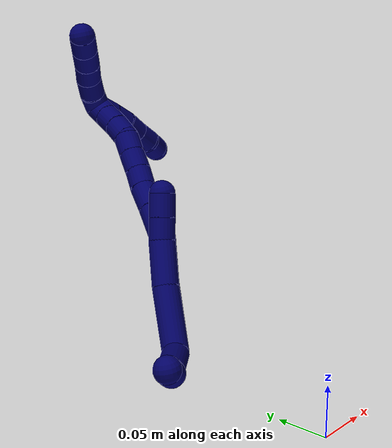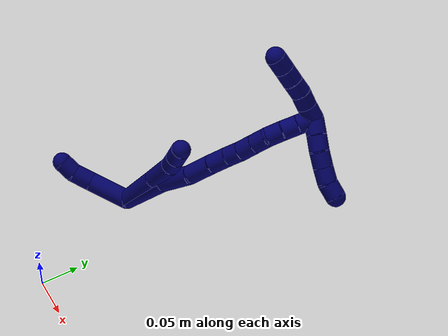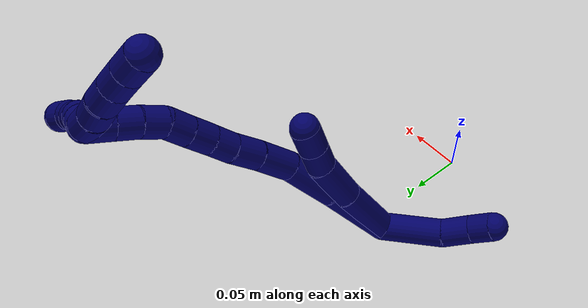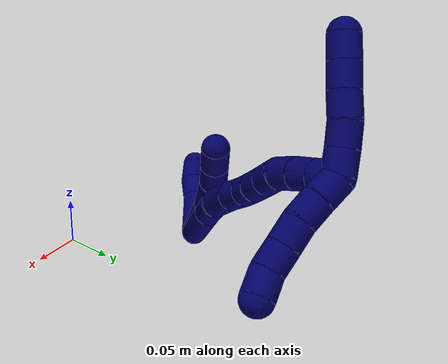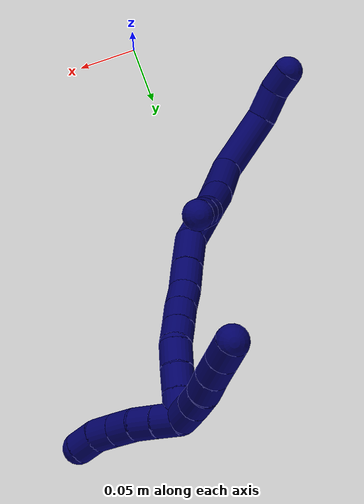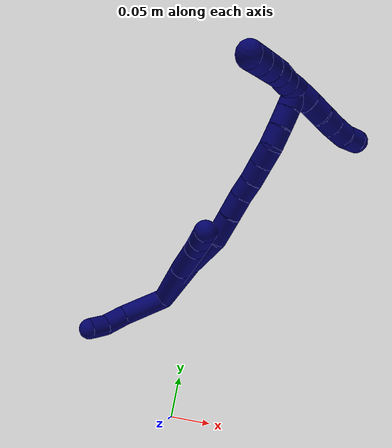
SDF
<sdf version="1.7">
 <world name="default">
  <model name="photoneo_s_sensor">
   <static>1</static>
   <pose>0 0 2 1.57079 1.57079 3.14159</pose>
   <link name="link">
    <inertial><mass>0.1</mass></inertial>
    <sensor name="sensor" type="depth">
     <update_rate>30</update_rate>
     <camera>
      <horizontal_fov>1.22</horizontal_fov>
      <image><width>1920</width><height>1200</height><format>B8G8R8</format></image>
      <clip><near>0.1</near><far>4</far></clip>
      <depth_camera><output>points</output></depth_camera>
     </camera>
     <plugin name="camera_plugin" filename="libgazebo_ros_depth_camera.so">
      <baseline>0.2</baseline>
      <alwaysOn>1</alwaysOn>
      <updateRate>0.0</updateRate>
      <cameraName>camera_ir</cameraName>
      <imageTopicName>/camera/color/image_raw</imageTopicName>
      <cameraInfoTopicName>/camera/color/camera_info</cameraInfoTopicName>
      <depthImageTopicName>/camera/depth/image_raw</depthImageTopicName>
      <depthImageCameraInfoTopicName>/camera/depth/camera_info</depthImageCameraInfoTopicName>
      <pointCloudTopicName>/camera/depth/points</pointCloudTopicName>
      <frameName>fr_optical</frameName>
      <pointCloudCutoff>0.1</pointCloudCutoff>
      <pointCloudCutoffMax>2.0</pointCloudCutoffMax>
      <distortionK1>0</distortionK1>
      <distortionK2>0</distortionK2>
      <distortionK3>0</distortionK3>
      <distortionT1>0</distortionT1>
      <distortionT2>0</distortionT2>
      <CxPrime>0</CxPrime>
      <Cx>0</Cx>
      <Cy>0</Cy>
      <focalLength>0</focalLength>
      <hackBaseline>0</hackBaseline>
     </plugin>
    </sensor>
   </link>
  </model>
  <model name="bin">
   <static>1</static>
   <link name="bottom">
    <collision name="collision-bottom">
     <pose>0 0 -0.01 0 -0 0</pose>
     <geometry><box><size>0.8 0.6 0.02</size></box></geometry>
     <surface>
      <friction><ode><mu>100</mu><mu2>100</mu2></ode></friction>
      <contact><collide_bitmask>65535</collide_bitmask></contact>
     </surface>
    </collision>
   </link>
   <link name="west_wall">
    <collision name="collision-west_wall">
     <pose>-0.41 0 0.1 0 -0 0</pose>
     <geometry><box><size>0.02 0.6 0.2</size></box></geometry>
     <surface>
      <friction><ode><mu>100</mu><mu2>100</mu2></ode></friction>
      <contact><collide_bitmask>65535</collide_bitmask></contact>
     </surface>
    </collision>
   </link>
   <link name="east_wall">
    <collision name="collision-east_wall">
     <pose>0.41 0 0.1 0 -0 0</pose>
     <geometry><box><size>0.02 0.6 0.2</size></box></geometry>
     <surface>
      <friction><ode><mu>100</mu><mu2>100</mu2></ode></friction>
      <contact><collide_bitmask>65535</collide_bitmask></contact>
     </surface>
    </collision>
   </link>
   <link name="south_wall">
    <collision name="collision-south_wall">
     <pose>0 -0.31 0.1 0 -0 0</pose>
     <geometry><box><size>0.8 0.02 0.2</size></box></geometry>
     <surface>
      <friction><ode><mu>100</mu><mu2>100</mu2></ode></friction>
      <contact><collide_bitmask>65535</collide_bitmask></contact>
     </surface>
    </collision>
   </link>
   <link name="north_wall">
    <collision name="collision-north_wall">
     <pose>0 0.31 0.1 0 -0 0</pose>
     <geometry><box><size>0.8 0.02 0.2</size></box></geometry>
     <surface>
      <friction><ode><mu>100</mu><mu2>100</mu2></ode></friction>
      <contact><collide_bitmask>65535</collide_bitmask></contact>
     </surface>
    </collision>
   </link>
  </model>
  <model name="7">
   <static>0</static>
   <link name="7">
    <collision name="collision-cylinder-e_1_2_8">
     <pose>0.009693 -0.010179 -0.0278 2.79061 0.316416 1.46536</pose>
     <geometry><cylinder><radius>0.0125</radius><length>0.062303</length></cylinder></geometry>
     <surface>
      <friction><ode><mu>1.16</mu><mu2>1.16</mu2><slip1>0</slip1><slip2>0</slip2></ode></friction>
      <contact><ode><kp>1e+06</kp><kd>1</kd><max_vel>0</max_vel><min_depth>0.001</min_depth></ode></contact>
     </surface>
    </collision>
    <visual name="visual-cylinder-e_1_2_8">
     <pose>0.009693 -0.010179 -0.0278 2.79061 0.316416 1.46536</pose>
     <geometry><cylinder><radius>0.0125</radius><length>0.062303</length></cylinder></geometry>
     <material><ambient>0.003922 0 0.403922 1</ambient></material>
    </visual>
    <collision name="collision-cylinder-e_2_8_9">
     <pose>0.026956 -0.02578 -0.075352 2.87369 0.354015 1.8503</pose>
     <geometry><cylinder><radius>0.0125</radius><length>0.043672</length></cylinder></geometry>
     <surface>
      <friction><ode><mu>1.16</mu><mu2>1.16</mu2><slip1>0</slip1><slip2>0</slip2></ode></friction>
      <contact><ode><kp>1e+06</kp><kd>1</kd><max_vel>0</max_vel><min_depth>0.001</min_depth></ode></contact>
     </surface>
    </collision>
    <visual name="visual-cylinder-e_2_8_9">
     <pose>0.026956 -0.02578 -0.075352 2.87369 0.354015 1.8503</pose>
     <geometry><cylinder><radius>0.0125</radius><length>0.043672</length></cylinder></geometry>
     <material><ambient>0.003922 0 0.403922 1</ambient></material>
    </visual>
    <collision name="collision-cylinder-e_3_9_10">
     <pose>0.037632 -0.031577 -0.105403 3.10516 0.292722 2.8957</pose>
     <geometry><cylinder><radius>0.0125</radius><length>0.021528</length></cylinder></geometry>
     <surface>
      <friction><ode><mu>1.16</mu><mu2>1.16</mu2><slip1>0</slip1><slip2>0</slip2></ode></friction>
      <contact><ode><kp>1e+06</kp><kd>1</kd><max_vel>0</max_vel><min_depth>0.001</min_depth></ode></contact>
     </surface>
    </collision>
    <visual name="visual-cylinder-e_3_9_10">
     <pose>0.037632 -0.031577 -0.105403 3.10516 0.292722 2.8957</pose>
     <geometry><cylinder><radius>0.0125</radius><length>0.021528</length></cylinder></geometry>
     <material><ambient>0.003922 0 0.403922 1</ambient></material>
    </visual>
    <collision name="collision-cylinder-e_4_10_6">
     <pose>0.043914 -0.032328 -0.126486 3.10677 0.28622 2.90109</pose>
     <geometry><cylinder><radius>0.0125</radius><length>0.022497</length></cylinder></geometry>
     <surface>
      <friction><ode><mu>1.16</mu><mu2>1.16</mu2><slip1>0</slip1><slip2>0</slip2></ode></friction>
      <contact><ode><kp>1e+06</kp><kd>1</kd><max_vel>0</max_vel><min_depth>0.001</min_depth></ode></contact>
     </surface>
    </collision>
    <visual name="visual-cylinder-e_4_10_6">
     <pose>0.043914 -0.032328 -0.126486 3.10677 0.28622 2.90109</pose>
     <geometry><cylinder><radius>0.0125</radius><length>0.022497</length></cylinder></geometry>
     <material><ambient>0.003922 0 0.403922 1</ambient></material>
    </visual>
    <collision name="collision-cylinder-e_1_2_11">
     <pose>-0.019139 0.018728 -0.000996 -1.62392 -0.795541 0.83421</pose>
     <geometry><cylinder><radius>0.0125</radius><length>0.053592</length></cylinder></geometry>
     <surface>
      <friction><ode><mu>1.16</mu><mu2>1.16</mu2><slip1>0</slip1><slip2>0</slip2></ode></friction>
      <contact><ode><kp>1e+06</kp><kd>1</kd><max_vel>0</max_vel><min_depth>0.001</min_depth></ode></contact>
     </surface>
    </collision>
    <visual name="visual-cylinder-e_1_2_11">
     <pose>-0.019139 0.018728 -0.000996 -1.62392 -0.795541 0.83421</pose>
     <geometry><cylinder><radius>0.0125</radius><length>0.053592</length></cylinder></geometry>
     <material><ambient>0.003922 0 0.403922 1</ambient></material>
    </visual>
    <collision name="collision-cylinder-e_2_11_12">
     <pose>-0.045461 0.047639 -0.005105 -1.86747 -0.593463 0.783659</pose>
     <geometry><cylinder><radius>0.0125</radius><length>0.02569</length></cylinder></geometry>
     <surface>
      <friction><ode><mu>1.16</mu><mu2>1.16</mu2><slip1>0</slip1><slip2>0</slip2></ode></friction>
      <contact><ode><kp>1e+06</kp><kd>1</kd><max_vel>0</max_vel><min_depth>0.001</min_depth></ode></contact>
     </surface>
    </collision>
    <visual name="visual-cylinder-e_2_11_12">
     <pose>-0.045461 0.047639 -0.005105 -1.86747 -0.593463 0.783659</pose>
     <geometry><cylinder><radius>0.0125</radius><length>0.02569</length></cylinder></geometry>
     <material><ambient>0.003922 0 0.403922 1</ambient></material>
    </visual>
    <collision name="collision-cylinder-e_3_12_5">
     <pose>-0.059062 0.064247 -0.013203 -2.23071 -0.66809 1.23293</pose>
     <geometry><cylinder><radius>0.0125</radius><length>0.020718</length></cylinder></geometry>
     <surface>
      <friction><ode><mu>1.16</mu><mu2>1.16</mu2><slip1>0</slip1><slip2>0</slip2></ode></friction>
      <contact><ode><kp>1e+06</kp><kd>1</kd><max_vel>0</max_vel><min_depth>0.001</min_depth></ode></contact>
     </surface>
    </collision>
    <visual name="visual-cylinder-e_3_12_5">
     <pose>-0.059062 0.064247 -0.013203 -2.23071 -0.66809 1.23293</pose>
     <geometry><cylinder><radius>0.0125</radius><length>0.020718</length></cylinder></geometry>
     <material><ambient>0.003922 0 0.403922 1</ambient></material>
    </visual>
    <collision name="collision-cylinder-e_1_2_13">
     <pose>0.013936 -0.01478 -0.028581 2.66433 0.408717 1.41127</pose>
     <geometry><cylinder><radius>0.0125</radius><length>0.070129</length></cylinder></geometry>
     <surface>
      <friction><ode><mu>1.16</mu><mu2>1.16</mu2><slip1>0</slip1><slip2>0</slip2></ode></friction>
      <contact><ode><kp>1e+06</kp><kd>1</kd><max_vel>0</max_vel><min_depth>0.001</min_depth></ode></contact>
     </surface>
    </collision>
    <visual name="visual-cylinder-e_1_2_13">
     <pose>0.013936 -0.01478 -0.028581 2.66433 0.408717 1.41127</pose>
     <geometry><cylinder><radius>0.0125</radius><length>0.070129</length></cylinder></geometry>
     <material><ambient>0.003922 0 0.403922 1</ambient></material>
    </visual>
    <collision name="collision-cylinder-e_2_13_14">
     <pose>0.039856 -0.040553 -0.074694 2.58152 0.524952 1.50279</pose>
     <geometry><cylinder><radius>0.0125</radius><length>0.047828</length></cylinder></geometry>
     <surface>
      <friction><ode><mu>1.16</mu><mu2>1.16</mu2><slip1>0</slip1><slip2>0</slip2></ode></friction>
      <contact><ode><kp>1e+06</kp><kd>1</kd><max_vel>0</max_vel><min_depth>0.001</min_depth></ode></contact>
     </surface>
    </collision>
    <visual name="visual-cylinder-e_2_13_14">
     <pose>0.039856 -0.040553 -0.074694 2.58152 0.524952 1.50279</pose>
     <geometry><cylinder><radius>0.0125</radius><length>0.047828</length></cylinder></geometry>
     <material><ambient>0.003922 0 0.403922 1</ambient></material>
    </visual>
    <collision name="collision-cylinder-e_3_14_15">
     <pose>0.056732 -0.061638 -0.105059 2.47527 0.291091 0.801319</pose>
     <geometry><cylinder><radius>0.0125</radius><length>0.034084</length></cylinder></geometry>
     <surface>
      <friction><ode><mu>1.16</mu><mu2>1.16</mu2><slip1>0</slip1><slip2>0</slip2></ode></friction>
      <contact><ode><kp>1e+06</kp><kd>1</kd><max_vel>0</max_vel><min_depth>0.001</min_depth></ode></contact>
     </surface>
    </collision>
    <visual name="visual-cylinder-e_3_14_15">
     <pose>0.056732 -0.061638 -0.105059 2.47527 0.291091 0.801319</pose>
     <geometry><cylinder><radius>0.0125</radius><length>0.034084</length></cylinder></geometry>
     <material><ambient>0.003922 0 0.403922 1</ambient></material>
    </visual>
    <collision name="collision-cylinder-e_4_15_16">
     <pose>0.065204 -0.079843 -0.127013 2.4145 0.285337 0.722019</pose>
     <geometry><cylinder><radius>0.0125</radius><length>0.025444</length></cylinder></geometry>
     <surface>
      <friction><ode><mu>1.16</mu><mu2>1.16</mu2><slip1>0</slip1><slip2>0</slip2></ode></friction>
      <contact><ode><kp>1e+06</kp><kd>1</kd><max_vel>0</max_vel><min_depth>0.001</min_depth></ode></contact>
     </surface>
    </collision>
    <visual name="visual-cylinder-e_4_15_16">
     <pose>0.065204 -0.079843 -0.127013 2.4145 0.285337 0.722019</pose>
     <geometry><cylinder><radius>0.0125</radius><length>0.025444</length></cylinder></geometry>
     <material><ambient>0.003922 0 0.403922 1</ambient></material>
    </visual>
    <collision name="collision-cylinder-e_5_16_17">
     <pose>0.072309 -0.093712 -0.143591 2.48445 0.357955 0.975733</pose>
     <geometry><cylinder><radius>0.0125</radius><length>0.020115</length></cylinder></geometry>
     <surface>
      <friction><ode><mu>1.16</mu><mu2>1.16</mu2><slip1>0</slip1><slip2>0</slip2></ode></friction>
      <contact><ode><kp>1e+06</kp><kd>1</kd><max_vel>0</max_vel><min_depth>0.001</min_depth></ode></contact>
     </surface>
    </collision>
    <visual name="visual-cylinder-e_5_16_17">
     <pose>0.072309 -0.093712 -0.143591 2.48445 0.357955 0.975733</pose>
     <geometry><cylinder><radius>0.0125</radius><length>0.020115</length></cylinder></geometry>
     <material><ambient>0.003922 0 0.403922 1</ambient></material>
    </visual>
    <collision name="collision-cylinder-e_6_17_18">
     <pose>0.078779 -0.105554 -0.159289 2.50518 0.280045 0.808623</pose>
     <geometry><cylinder><radius>0.0125</radius><length>0.021319</length></cylinder></geometry>
     <surface>
      <friction><ode><mu>1.16</mu><mu2>1.16</mu2><slip1>0</slip1><slip2>0</slip2></ode></friction>
      <contact><ode><kp>1e+06</kp><kd>1</kd><max_vel>0</max_vel><min_depth>0.001</min_depth></ode></contact>
     </surface>
    </collision>
    <visual name="visual-cylinder-e_6_17_18">
     <pose>0.078779 -0.105554 -0.159289 2.50518 0.280045 0.808623</pose>
     <geometry><cylinder><radius>0.0125</radius><length>0.021319</length></cylinder></geometry>
     <material><ambient>0.003922 0 0.403922 1</ambient></material>
    </visual>
    <collision name="collision-cylinder-e_7_18_19">
     <pose>0.084728 -0.117416 -0.175539 2.51717 0.295099 0.863083</pose>
     <geometry><cylinder><radius>0.0125</radius><length>0.020642</length></cylinder></geometry>
     <surface>
      <friction><ode><mu>1.16</mu><mu2>1.16</mu2><slip1>0</slip1><slip2>0</slip2></ode></friction>
      <contact><ode><kp>1e+06</kp><kd>1</kd><max_vel>0</max_vel><min_depth>0.001</min_depth></ode></contact>
     </surface>
    </collision>
    <visual name="visual-cylinder-e_7_18_19">
     <pose>0.084728 -0.117416 -0.175539 2.51717 0.295099 0.863083</pose>
     <geometry><cylinder><radius>0.0125</radius><length>0.020642</length></cylinder></geometry>
     <material><ambient>0.003922 0 0.403922 1</ambient></material>
    </visual>
    <collision name="collision-cylinder-e_8_19_20">
     <pose>0.08949 -0.131336 -0.189373 2.19131 0.174028 0.335939</pose>
     <geometry><cylinder><radius>0.0125</radius><length>0.020333</length></cylinder></geometry>
     <surface>
      <friction><ode><mu>1.16</mu><mu2>1.16</mu2><slip1>0</slip1><slip2>0</slip2></ode></friction>
      <contact><ode><kp>1e+06</kp><kd>1</kd><max_vel>0</max_vel><min_depth>0.001</min_depth></ode></contact>
     </surface>
    </collision>
    <visual name="visual-cylinder-e_8_19_20">
     <pose>0.08949 -0.131336 -0.189373 2.19131 0.174028 0.335939</pose>
     <geometry><cylinder><radius>0.0125</radius><length>0.020333</length></cylinder></geometry>
     <material><ambient>0.003922 0 0.403922 1</ambient></material>
    </visual>
    <collision name="collision-cylinder-e_9_20_21">
     <pose>0.092721 -0.147989 -0.200248 2.10683 0.147553 0.258303</pose>
     <geometry><cylinder><radius>0.0125</radius><length>0.020007</length></cylinder></geometry>
     <surface>
      <friction><ode><mu>1.16</mu><mu2>1.16</mu2><slip1>0</slip1><slip2>0</slip2></ode></friction>
      <contact><ode><kp>1e+06</kp><kd>1</kd><max_vel>0</max_vel><min_depth>0.001</min_depth></ode></contact>
     </surface>
    </collision>
    <visual name="visual-cylinder-e_9_20_21">
     <pose>0.092721 -0.147989 -0.200248 2.10683 0.147553 0.258303</pose>
     <geometry><cylinder><radius>0.0125</radius><length>0.020007</length></cylinder></geometry>
     <material><ambient>0.003922 0 0.403922 1</ambient></material>
    </visual>
    <collision name="collision-cylinder-e_10_21_1">
     <pose>0.095673 -0.165054 -0.210357 2.1043 0.147973 0.258282</pose>
     <geometry><cylinder><radius>0.0125</radius><length>0.020098</length></cylinder></geometry>
     <surface>
      <friction><ode><mu>1.16</mu><mu2>1.16</mu2><slip1>0</slip1><slip2>0</slip2></ode></friction>
      <contact><ode><kp>1e+06</kp><kd>1</kd><max_vel>0</max_vel><min_depth>0.001</min_depth></ode></contact>
     </surface>
    </collision>
    <visual name="visual-cylinder-e_10_21_1">
     <pose>0.095673 -0.165054 -0.210357 2.1043 0.147973 0.258282</pose>
     <geometry><cylinder><radius>0.0125</radius><length>0.020098</length></cylinder></geometry>
     <material><ambient>0.003922 0 0.403922 1</ambient></material>
    </visual>
    <collision name="collision-cylinder-e_1_1_22">
     <pose>0.092327 -0.168951 -0.222826 -2.58044 -0.503811 1.45798</pose>
     <geometry><cylinder><radius>0.0125</radius><length>0.02</length></cylinder></geometry>
     <surface>
      <friction><ode><mu>1.16</mu><mu2>1.16</mu2><slip1>0</slip1><slip2>0</slip2></ode></friction>
      <contact><ode><kp>1e+06</kp><kd>1</kd><max_vel>0</max_vel><min_depth>0.001</min_depth></ode></contact>
     </surface>
    </collision>
    <visual name="visual-cylinder-e_1_1_22">
     <pose>0.092327 -0.168951 -0.222826 -2.58044 -0.503811 1.45798</pose>
     <geometry><cylinder><radius>0.0125</radius><length>0.02</length></cylinder></geometry>
     <material><ambient>0.003922 0 0.403922 1</ambient></material>
    </visual>
    <collision name="collision-cylinder-e_2_22_23">
     <pose>0.083931 -0.159748 -0.238403 -2.63379 -0.364836 1.23595</pose>
     <geometry><cylinder><radius>0.0125</radius><length>0.02</length></cylinder></geometry>
     <surface>
      <friction><ode><mu>1.16</mu><mu2>1.16</mu2><slip1>0</slip1><slip2>0</slip2></ode></friction>
      <contact><ode><kp>1e+06</kp><kd>1</kd><max_vel>0</max_vel><min_depth>0.001</min_depth></ode></contact>
     </surface>
    </collision>
    <visual name="visual-cylinder-e_2_22_23">
     <pose>0.083931 -0.159748 -0.238403 -2.63379 -0.364836 1.23595</pose>
     <geometry><cylinder><radius>0.0125</radius><length>0.02</length></cylinder></geometry>
     <material><ambient>0.003922 0 0.403922 1</ambient></material>
    </visual>
    <collision name="collision-cylinder-e_3_23_24">
     <pose>0.077012 -0.149348 -0.253945 -2.47057 -0.341725 0.919009</pose>
     <geometry><cylinder><radius>0.0125</radius><length>0.02</length></cylinder></geometry>
     <surface>
      <friction><ode><mu>1.16</mu><mu2>1.16</mu2><slip1>0</slip1><slip2>0</slip2></ode></friction>
      <contact><ode><kp>1e+06</kp><kd>1</kd><max_vel>0</max_vel><min_depth>0.001</min_depth></ode></contact>
     </surface>
    </collision>
    <visual name="visual-cylinder-e_3_23_24">
     <pose>0.077012 -0.149348 -0.253945 -2.47057 -0.341725 0.919009</pose>
     <geometry><cylinder><radius>0.0125</radius><length>0.02</length></cylinder></geometry>
     <material><ambient>0.003922 0 0.403922 1</ambient></material>
    </visual>
    <collision name="collision-cylinder-e_4_24_25">
     <pose>0.069912 -0.137835 -0.268671 -2.48562 -0.3843 1.03876</pose>
     <geometry><cylinder><radius>0.0125</radius><length>0.02</length></cylinder></geometry>
     <surface>
      <friction><ode><mu>1.16</mu><mu2>1.16</mu2><slip1>0</slip1><slip2>0</slip2></ode></friction>
      <contact><ode><kp>1e+06</kp><kd>1</kd><max_vel>0</max_vel><min_depth>0.001</min_depth></ode></contact>
     </surface>
    </collision>
    <visual name="visual-cylinder-e_4_24_25">
     <pose>0.069912 -0.137835 -0.268671 -2.48562 -0.3843 1.03876</pose>
     <geometry><cylinder><radius>0.0125</radius><length>0.02</length></cylinder></geometry>
     <material><ambient>0.003922 0 0.403922 1</ambient></material>
    </visual>
    <collision name="collision-cylinder-e_5_25_4">
     <pose>0.062362 -0.126456 -0.283283 -2.47428 -0.389871 1.03558</pose>
     <geometry><cylinder><radius>0.0125</radius><length>0.02</length></cylinder></geometry>
     <surface>
      <friction><ode><mu>1.16</mu><mu2>1.16</mu2><slip1>0</slip1><slip2>0</slip2></ode></friction>
      <contact><ode><kp>1e+06</kp><kd>1</kd><max_vel>0</max_vel><min_depth>0.001</min_depth></ode></contact>
     </surface>
    </collision>
    <visual name="visual-cylinder-e_5_25_4">
     <pose>0.062362 -0.126456 -0.283283 -2.47428 -0.389871 1.03558</pose>
     <geometry><cylinder><radius>0.0125</radius><length>0.02</length></cylinder></geometry>
     <material><ambient>0.003922 0 0.403922 1</ambient></material>
    </visual>
    <collision name="collision-cylinder-e_1_1_26">
     <pose>0.105159 -0.173533 -0.209418 -0.013098 0.928094 -0.006555</pose>
     <geometry><cylinder><radius>0.0125</radius><length>0.02</length></cylinder></geometry>
     <surface>
      <friction><ode><mu>1.16</mu><mu2>1.16</mu2><slip1>0</slip1><slip2>0</slip2></ode></friction>
      <contact><ode><kp>1e+06</kp><kd>1</kd><max_vel>0</max_vel><min_depth>0.001</min_depth></ode></contact>
     </surface>
    </collision>
    <visual name="visual-cylinder-e_1_1_26">
     <pose>0.105159 -0.173533 -0.209418 -0.013098 0.928094 -0.006555</pose>
     <geometry><cylinder><radius>0.0125</radius><length>0.02</length></cylinder></geometry>
     <material><ambient>0.003922 0 0.403922 1</ambient></material>
    </visual>
    <collision name="collision-cylinder-e_2_26_27">
     <pose>0.120852 -0.173538 -0.19703 0.012983 0.876901 0.006088</pose>
     <geometry><cylinder><radius>0.0125</radius><length>0.02</length></cylinder></geometry>
     <surface>
      <friction><ode><mu>1.16</mu><mu2>1.16</mu2><slip1>0</slip1><slip2>0</slip2></ode></friction>
      <contact><ode><kp>1e+06</kp><kd>1</kd><max_vel>0</max_vel><min_depth>0.001</min_depth></ode></contact>
     </surface>
    </collision>
    <visual name="visual-cylinder-e_2_26_27">
     <pose>0.120852 -0.173538 -0.19703 0.012983 0.876901 0.006088</pose>
     <geometry><cylinder><radius>0.0125</radius><length>0.02</length></cylinder></geometry>
     <material><ambient>0.003922 0 0.403922 1</ambient></material>
    </visual>
    <collision name="collision-cylinder-e_3_27_28">
     <pose>0.135539 -0.174888 -0.183607 0.178395 0.775364 0.073009</pose>
     <geometry><cylinder><radius>0.0125</radius><length>0.02</length></cylinder></geometry>
     <surface>
      <friction><ode><mu>1.16</mu><mu2>1.16</mu2><slip1>0</slip1><slip2>0</slip2></ode></friction>
      <contact><ode><kp>1e+06</kp><kd>1</kd><max_vel>0</max_vel><min_depth>0.001</min_depth></ode></contact>
     </surface>
    </collision>
    <visual name="visual-cylinder-e_3_27_28">
     <pose>0.135539 -0.174888 -0.183607 0.178395 0.775364 0.073009</pose>
     <geometry><cylinder><radius>0.0125</radius><length>0.02</length></cylinder></geometry>
     <material><ambient>0.003922 0 0.403922 1</ambient></material>
    </visual>
    <collision name="collision-cylinder-e_4_28_29">
     <pose>0.149958 -0.177541 -0.170019 0.208187 0.83599 0.092739</pose>
     <geometry><cylinder><radius>0.0125</radius><length>0.02</length></cylinder></geometry>
     <surface>
      <friction><ode><mu>1.16</mu><mu2>1.16</mu2><slip1>0</slip1><slip2>0</slip2></ode></friction>
      <contact><ode><kp>1e+06</kp><kd>1</kd><max_vel>0</max_vel><min_depth>0.001</min_depth></ode></contact>
     </surface>
    </collision>
    <visual name="visual-cylinder-e_4_28_29">
     <pose>0.149958 -0.177541 -0.170019 0.208187 0.83599 0.092739</pose>
     <geometry><cylinder><radius>0.0125</radius><length>0.02</length></cylinder></geometry>
     <material><ambient>0.003922 0 0.403922 1</ambient></material>
    </visual>
    <collision name="collision-cylinder-e_5_29_3">
     <pose>0.16462 -0.182786 -0.157744 0.593874 0.809872 0.260814</pose>
     <geometry><cylinder><radius>0.0125</radius><length>0.02</length></cylinder></geometry>
     <surface>
      <friction><ode><mu>1.16</mu><mu2>1.16</mu2><slip1>0</slip1><slip2>0</slip2></ode></friction>
      <contact><ode><kp>1e+06</kp><kd>1</kd><max_vel>0</max_vel><min_depth>0.001</min_depth></ode></contact>
     </surface>
    </collision>
    <visual name="visual-cylinder-e_5_29_3">
     <pose>0.16462 -0.182786 -0.157744 0.593874 0.809872 0.260814</pose>
     <geometry><cylinder><radius>0.0125</radius><length>0.02</length></cylinder></geometry>
     <material><ambient>0.003922 0 0.403922 1</ambient></material>
    </visual>
    <collision name="collision-sphere-3">
     <pose>0.171862 -0.186644 -0.152029 0 -0 0</pose>
     <geometry><sphere><radius>0.0125</radius></sphere></geometry>
     <surface>
      <friction><ode><mu>1.16</mu><mu2>1.16</mu2><slip1>0</slip1><slip2>0</slip2></ode></friction>
      <contact><ode><kp>1e+06</kp><kd>1</kd><max_vel>0</max_vel><min_depth>0.001</min_depth></ode></contact>
     </surface>
    </collision>
    <visual name="visual-sphere-3">
     <pose>0.171862 -0.186644 -0.152029 0 -0 0</pose>
     <geometry><sphere><radius>0.0125</radius></sphere></geometry>
     <material><ambient>0.003922 0 0.403922 1</ambient></material>
    </visual>
    <collision name="collision-sphere-29">
     <pose>0.157378 -0.178927 -0.163459 0 -0 0</pose>
     <geometry><sphere><radius>0.0125</radius></sphere></geometry>
     <surface>
      <friction><ode><mu>1.16</mu><mu2>1.16</mu2><slip1>0</slip1><slip2>0</slip2></ode></friction>
      <contact><ode><kp>1e+06</kp><kd>1</kd><max_vel>0</max_vel><min_depth>0.001</min_depth></ode></contact>
     </surface>
    </collision>
    <visual name="visual-sphere-29">
     <pose>0.157378 -0.178927 -0.163459 0 -0 0</pose>
     <geometry><sphere><radius>0.0125</radius></sphere></geometry>
     <material><ambient>0.003922 0 0.403922 1</ambient></material>
    </visual>
    <collision name="collision-sphere-28">
     <pose>0.142539 -0.176155 -0.176579 0 -0 0</pose>
     <geometry><sphere><radius>0.0125</radius></sphere></geometry>
     <surface>
      <friction><ode><mu>1.16</mu><mu2>1.16</mu2><slip1>0</slip1><slip2>0</slip2></ode></friction>
      <contact><ode><kp>1e+06</kp><kd>1</kd><max_vel>0</max_vel><min_depth>0.001</min_depth></ode></contact>
     </surface>
    </collision>
    <visual name="visual-sphere-28">
     <pose>0.142539 -0.176155 -0.176579 0 -0 0</pose>
     <geometry><sphere><radius>0.0125</radius></sphere></geometry>
     <material><ambient>0.003922 0 0.403922 1</ambient></material>
    </visual>
    <collision name="collision-sphere-27">
     <pose>0.128539 -0.173621 -0.190635 0 -0 0</pose>
     <geometry><sphere><radius>0.0125</radius></sphere></geometry>
     <surface>
      <friction><ode><mu>1.16</mu><mu2>1.16</mu2><slip1>0</slip1><slip2>0</slip2></ode></friction>
      <contact><ode><kp>1e+06</kp><kd>1</kd><max_vel>0</max_vel><min_depth>0.001</min_depth></ode></contact>
     </surface>
    </collision>
    <visual name="visual-sphere-27">
     <pose>0.128539 -0.173621 -0.190635 0 -0 0</pose>
     <geometry><sphere><radius>0.0125</radius></sphere></geometry>
     <material><ambient>0.003922 0 0.403922 1</ambient></material>
    </visual>
    <collision name="collision-sphere-26">
     <pose>0.113164 -0.173455 -0.203425 0 -0 0</pose>
     <geometry><sphere><radius>0.0125</radius></sphere></geometry>
     <surface>
      <friction><ode><mu>1.16</mu><mu2>1.16</mu2><slip1>0</slip1><slip2>0</slip2></ode></friction>
      <contact><ode><kp>1e+06</kp><kd>1</kd><max_vel>0</max_vel><min_depth>0.001</min_depth></ode></contact>
     </surface>
    </collision>
    <visual name="visual-sphere-26">
     <pose>0.113164 -0.173455 -0.203425 0 -0 0</pose>
     <geometry><sphere><radius>0.0125</radius></sphere></geometry>
     <material><ambient>0.003922 0 0.403922 1</ambient></material>
    </visual>
    <collision name="collision-sphere-4">
     <pose>0.058561 -0.120732 -0.290548 0 -0 0</pose>
     <geometry><sphere><radius>0.0125</radius></sphere></geometry>
     <surface>
      <friction><ode><mu>1.16</mu><mu2>1.16</mu2><slip1>0</slip1><slip2>0</slip2></ode></friction>
      <contact><ode><kp>1e+06</kp><kd>1</kd><max_vel>0</max_vel><min_depth>0.001</min_depth></ode></contact>
     </surface>
    </collision>
    <visual name="visual-sphere-4">
     <pose>0.058561 -0.120732 -0.290548 0 -0 0</pose>
     <geometry><sphere><radius>0.0125</radius></sphere></geometry>
     <material><ambient>0.003922 0 0.403922 1</ambient></material>
    </visual>
    <collision name="collision-sphere-25">
     <pose>0.066163 -0.13218 -0.276017 0 -0 0</pose>
     <geometry><sphere><radius>0.0125</radius></sphere></geometry>
     <surface>
      <friction><ode><mu>1.16</mu><mu2>1.16</mu2><slip1>0</slip1><slip2>0</slip2></ode></friction>
      <contact><ode><kp>1e+06</kp><kd>1</kd><max_vel>0</max_vel><min_depth>0.001</min_depth></ode></contact>
     </surface>
    </collision>
    <visual name="visual-sphere-25">
     <pose>0.066163 -0.13218 -0.276017 0 -0 0</pose>
     <geometry><sphere><radius>0.0125</radius></sphere></geometry>
     <material><ambient>0.003922 0 0.403922 1</ambient></material>
    </visual>
    <collision name="collision-sphere-24">
     <pose>0.073661 -0.143489 -0.261324 0 -0 0</pose>
     <geometry><sphere><radius>0.0125</radius></sphere></geometry>
     <surface>
      <friction><ode><mu>1.16</mu><mu2>1.16</mu2><slip1>0</slip1><slip2>0</slip2></ode></friction>
      <contact><ode><kp>1e+06</kp><kd>1</kd><max_vel>0</max_vel><min_depth>0.001</min_depth></ode></contact>
     </surface>
    </collision>
    <visual name="visual-sphere-24">
     <pose>0.073661 -0.143489 -0.261324 0 -0 0</pose>
     <geometry><sphere><radius>0.0125</radius></sphere></geometry>
     <material><ambient>0.003922 0 0.403922 1</ambient></material>
    </visual>
    <collision name="collision-sphere-23">
     <pose>0.080363 -0.155206 -0.246566 0 -0 0</pose>
     <geometry><sphere><radius>0.0125</radius></sphere></geometry>
     <surface>
      <friction><ode><mu>1.16</mu><mu2>1.16</mu2><slip1>0</slip1><slip2>0</slip2></ode></friction>
      <contact><ode><kp>1e+06</kp><kd>1</kd><max_vel>0</max_vel><min_depth>0.001</min_depth></ode></contact>
     </surface>
    </collision>
    <visual name="visual-sphere-23">
     <pose>0.080363 -0.155206 -0.246566 0 -0 0</pose>
     <geometry><sphere><radius>0.0125</radius></sphere></geometry>
     <material><ambient>0.003922 0 0.403922 1</ambient></material>
    </visual>
    <collision name="collision-sphere-22">
     <pose>0.087499 -0.164291 -0.23024 0 -0 0</pose>
     <geometry><sphere><radius>0.0125</radius></sphere></geometry>
     <surface>
      <friction><ode><mu>1.16</mu><mu2>1.16</mu2><slip1>0</slip1><slip2>0</slip2></ode></friction>
      <contact><ode><kp>1e+06</kp><kd>1</kd><max_vel>0</max_vel><min_depth>0.001</min_depth></ode></contact>
     </surface>
    </collision>
    <visual name="visual-sphere-22">
     <pose>0.087499 -0.164291 -0.23024 0 -0 0</pose>
     <geometry><sphere><radius>0.0125</radius></sphere></geometry>
     <material><ambient>0.003922 0 0.403922 1</ambient></material>
    </visual>
    <collision name="collision-sphere-1">
     <pose>0.097154 -0.173612 -0.215411 0 -0 0</pose>
     <geometry><sphere><radius>0.0125</radius></sphere></geometry>
     <surface>
      <friction><ode><mu>1.16</mu><mu2>1.16</mu2><slip1>0</slip1><slip2>0</slip2></ode></friction>
      <contact><ode><kp>1e+06</kp><kd>1</kd><max_vel>0</max_vel><min_depth>0.001</min_depth></ode></contact>
     </surface>
    </collision>
    <visual name="visual-sphere-1">
     <pose>0.097154 -0.173612 -0.215411 0 -0 0</pose>
     <geometry><sphere><radius>0.0125</radius></sphere></geometry>
     <material><ambient>0.003922 0 0.403922 1</ambient></material>
    </visual>
    <collision name="collision-sphere-21">
     <pose>0.094191 -0.156496 -0.205302 0 -0 0</pose>
     <geometry><sphere><radius>0.0125</radius></sphere></geometry>
     <surface>
      <friction><ode><mu>1.16</mu><mu2>1.16</mu2><slip1>0</slip1><slip2>0</slip2></ode></friction>
      <contact><ode><kp>1e+06</kp><kd>1</kd><max_vel>0</max_vel><min_depth>0.001</min_depth></ode></contact>
     </surface>
    </collision>
    <visual name="visual-sphere-21">
     <pose>0.094191 -0.156496 -0.205302 0 -0 0</pose>
     <geometry><sphere><radius>0.0125</radius></sphere></geometry>
     <material><ambient>0.003922 0 0.403922 1</ambient></material>
    </visual>
    <collision name="collision-sphere-11">
     <pose>-0.038278 0.037456 -0.001992 0 -0 0</pose>
     <geometry><sphere><radius>0.0125</radius></sphere></geometry>
     <surface>
      <friction><ode><mu>1.16</mu><mu2>1.16</mu2><slip1>0</slip1><slip2>0</slip2></ode></friction>
      <contact><ode><kp>1e+06</kp><kd>1</kd><max_vel>0</max_vel><min_depth>0.001</min_depth></ode></contact>
     </surface>
    </collision>
    <visual name="visual-sphere-11">
     <pose>-0.038278 0.037456 -0.001992 0 -0 0</pose>
     <geometry><sphere><radius>0.0125</radius></sphere></geometry>
     <material><ambient>0.003922 0 0.403922 1</ambient></material>
    </visual>
    <collision name="collision-sphere-6">
     <pose>0.04709 -0.032703 -0.13727 0 -0 0</pose>
     <geometry><sphere><radius>0.0125</radius></sphere></geometry>
     <surface>
      <friction><ode><mu>1.16</mu><mu2>1.16</mu2><slip1>0</slip1><slip2>0</slip2></ode></friction>
      <contact><ode><kp>1e+06</kp><kd>1</kd><max_vel>0</max_vel><min_depth>0.001</min_depth></ode></contact>
     </surface>
    </collision>
    <visual name="visual-sphere-6">
     <pose>0.04709 -0.032703 -0.13727 0 -0 0</pose>
     <geometry><sphere><radius>0.0125</radius></sphere></geometry>
     <material><ambient>0.003922 0 0.403922 1</ambient></material>
    </visual>
    <collision name="collision-sphere-10">
     <pose>0.040738 -0.031952 -0.115702 0 -0 0</pose>
     <geometry><sphere><radius>0.0125</radius></sphere></geometry>
     <surface>
      <friction><ode><mu>1.16</mu><mu2>1.16</mu2><slip1>0</slip1><slip2>0</slip2></ode></friction>
      <contact><ode><kp>1e+06</kp><kd>1</kd><max_vel>0</max_vel><min_depth>0.001</min_depth></ode></contact>
     </surface>
    </collision>
    <visual name="visual-sphere-10">
     <pose>0.040738 -0.031952 -0.115702 0 -0 0</pose>
     <geometry><sphere><radius>0.0125</radius></sphere></geometry>
     <material><ambient>0.003922 0 0.403922 1</ambient></material>
    </visual>
    <collision name="collision-sphere-9">
     <pose>0.034526 -0.031201 -0.095103 0 -0 0</pose>
     <geometry><sphere><radius>0.0125</radius></sphere></geometry>
     <surface>
      <friction><ode><mu>1.16</mu><mu2>1.16</mu2><slip1>0</slip1><slip2>0</slip2></ode></friction>
      <contact><ode><kp>1e+06</kp><kd>1</kd><max_vel>0</max_vel><min_depth>0.001</min_depth></ode></contact>
     </surface>
    </collision>
    <visual name="visual-sphere-9">
     <pose>0.034526 -0.031201 -0.095103 0 -0 0</pose>
     <geometry><sphere><radius>0.0125</radius></sphere></geometry>
     <material><ambient>0.003922 0 0.403922 1</ambient></material>
    </visual>
    <collision name="collision-sphere-2">
     <geometry><sphere><radius>0.0125</radius></sphere></geometry>
     <surface>
      <friction><ode><mu>1.16</mu><mu2>1.16</mu2><slip1>0</slip1><slip2>0</slip2></ode></friction>
      <contact><ode><kp>1e+06</kp><kd>1</kd><max_vel>0</max_vel><min_depth>0.001</min_depth></ode></contact>
     </surface>
    </collision>
    <visual name="visual-sphere-2">
     <geometry><sphere><radius>0.0125</radius></sphere></geometry>
     <material><ambient>0.003922 0 0.403922 1</ambient></material>
    </visual>
    <collision name="collision-sphere-19">
     <pose>0.087729 -0.123189 -0.183551 0 -0 0</pose>
     <geometry><sphere><radius>0.0125</radius></sphere></geometry>
     <surface>
      <friction><ode><mu>1.16</mu><mu2>1.16</mu2><slip1>0</slip1><slip2>0</slip2></ode></friction>
      <contact><ode><kp>1e+06</kp><kd>1</kd><max_vel>0</max_vel><min_depth>0.001</min_depth></ode></contact>
     </surface>
    </collision>
    <visual name="visual-sphere-19">
     <pose>0.087729 -0.123189 -0.183551 0 -0 0</pose>
     <geometry><sphere><radius>0.0125</radius></sphere></geometry>
     <material><ambient>0.003922 0 0.403922 1</ambient></material>
    </visual>
    <collision name="collision-sphere-8">
     <pose>0.019386 -0.020358 -0.0556 0 -0 0</pose>
     <geometry><sphere><radius>0.0125</radius></sphere></geometry>
     <surface>
      <friction><ode><mu>1.16</mu><mu2>1.16</mu2><slip1>0</slip1><slip2>0</slip2></ode></friction>
      <contact><ode><kp>1e+06</kp><kd>1</kd><max_vel>0</max_vel><min_depth>0.001</min_depth></ode></contact>
     </surface>
    </collision>
    <visual name="visual-sphere-8">
     <pose>0.019386 -0.020358 -0.0556 0 -0 0</pose>
     <geometry><sphere><radius>0.0125</radius></sphere></geometry>
     <material><ambient>0.003922 0 0.403922 1</ambient></material>
    </visual>
    <collision name="collision-sphere-12">
     <pose>-0.052644 0.057823 -0.008218 0 -0 0</pose>
     <geometry><sphere><radius>0.0125</radius></sphere></geometry>
     <surface>
      <friction><ode><mu>1.16</mu><mu2>1.16</mu2><slip1>0</slip1><slip2>0</slip2></ode></friction>
      <contact><ode><kp>1e+06</kp><kd>1</kd><max_vel>0</max_vel><min_depth>0.001</min_depth></ode></contact>
     </surface>
    </collision>
    <visual name="visual-sphere-12">
     <pose>-0.052644 0.057823 -0.008218 0 -0 0</pose>
     <geometry><sphere><radius>0.0125</radius></sphere></geometry>
     <material><ambient>0.003922 0 0.403922 1</ambient></material>
    </visual>
    <collision name="collision-sphere-5">
     <pose>-0.065479 0.070672 -0.018188 0 -0 0</pose>
     <geometry><sphere><radius>0.0125</radius></sphere></geometry>
     <surface>
      <friction><ode><mu>1.16</mu><mu2>1.16</mu2><slip1>0</slip1><slip2>0</slip2></ode></friction>
      <contact><ode><kp>1e+06</kp><kd>1</kd><max_vel>0</max_vel><min_depth>0.001</min_depth></ode></contact>
     </surface>
    </collision>
    <visual name="visual-sphere-5">
     <pose>-0.065479 0.070672 -0.018188 0 -0 0</pose>
     <geometry><sphere><radius>0.0125</radius></sphere></geometry>
     <material><ambient>0.003922 0 0.403922 1</ambient></material>
    </visual>
    <collision name="collision-sphere-13">
     <pose>0.027871 -0.02956 -0.057161 0 -0 0</pose>
     <geometry><sphere><radius>0.0125</radius></sphere></geometry>
     <surface>
      <friction><ode><mu>1.16</mu><mu2>1.16</mu2><slip1>0</slip1><slip2>0</slip2></ode></friction>
      <contact><ode><kp>1e+06</kp><kd>1</kd><max_vel>0</max_vel><min_depth>0.001</min_depth></ode></contact>
     </surface>
    </collision>
    <visual name="visual-sphere-13">
     <pose>0.027871 -0.02956 -0.057161 0 -0 0</pose>
     <geometry><sphere><radius>0.0125</radius></sphere></geometry>
     <material><ambient>0.003922 0 0.403922 1</ambient></material>
    </visual>
    <collision name="collision-sphere-14">
     <pose>0.051841 -0.051547 -0.092226 0 -0 0</pose>
     <geometry><sphere><radius>0.0125</radius></sphere></geometry>
     <surface>
      <friction><ode><mu>1.16</mu><mu2>1.16</mu2><slip1>0</slip1><slip2>0</slip2></ode></friction>
      <contact><ode><kp>1e+06</kp><kd>1</kd><max_vel>0</max_vel><min_depth>0.001</min_depth></ode></contact>
     </surface>
    </collision>
    <visual name="visual-sphere-14">
     <pose>0.051841 -0.051547 -0.092226 0 -0 0</pose>
     <geometry><sphere><radius>0.0125</radius></sphere></geometry>
     <material><ambient>0.003922 0 0.403922 1</ambient></material>
    </visual>
    <collision name="collision-sphere-15">
     <pose>0.061623 -0.071728 -0.117892 0 -0 0</pose>
     <geometry><sphere><radius>0.0125</radius></sphere></geometry>
     <surface>
      <friction><ode><mu>1.16</mu><mu2>1.16</mu2><slip1>0</slip1><slip2>0</slip2></ode></friction>
      <contact><ode><kp>1e+06</kp><kd>1</kd><max_vel>0</max_vel><min_depth>0.001</min_depth></ode></contact>
     </surface>
    </collision>
    <visual name="visual-sphere-15">
     <pose>0.061623 -0.071728 -0.117892 0 -0 0</pose>
     <geometry><sphere><radius>0.0125</radius></sphere></geometry>
     <material><ambient>0.003922 0 0.403922 1</ambient></material>
    </visual>
    <collision name="collision-sphere-16">
     <pose>0.068785 -0.087957 -0.136133 0 -0 0</pose>
     <geometry><sphere><radius>0.0125</radius></sphere></geometry>
     <surface>
      <friction><ode><mu>1.16</mu><mu2>1.16</mu2><slip1>0</slip1><slip2>0</slip2></ode></friction>
      <contact><ode><kp>1e+06</kp><kd>1</kd><max_vel>0</max_vel><min_depth>0.001</min_depth></ode></contact>
     </surface>
    </collision>
    <visual name="visual-sphere-16">
     <pose>0.068785 -0.087957 -0.136133 0 -0 0</pose>
     <geometry><sphere><radius>0.0125</radius></sphere></geometry>
     <material><ambient>0.003922 0 0.403922 1</ambient></material>
    </visual>
    <collision name="collision-sphere-17">
     <pose>0.075833 -0.099466 -0.15105 0 -0 0</pose>
     <geometry><sphere><radius>0.0125</radius></sphere></geometry>
     <surface>
      <friction><ode><mu>1.16</mu><mu2>1.16</mu2><slip1>0</slip1><slip2>0</slip2></ode></friction>
      <contact><ode><kp>1e+06</kp><kd>1</kd><max_vel>0</max_vel><min_depth>0.001</min_depth></ode></contact>
     </surface>
    </collision>
    <visual name="visual-sphere-17">
     <pose>0.075833 -0.099466 -0.15105 0 -0 0</pose>
     <geometry><sphere><radius>0.0125</radius></sphere></geometry>
     <material><ambient>0.003922 0 0.403922 1</ambient></material>
    </visual>
    <collision name="collision-sphere-18">
     <pose>0.081726 -0.111643 -0.167527 0 -0 0</pose>
     <geometry><sphere><radius>0.0125</radius></sphere></geometry>
     <surface>
      <friction><ode><mu>1.16</mu><mu2>1.16</mu2><slip1>0</slip1><slip2>0</slip2></ode></friction>
      <contact><ode><kp>1e+06</kp><kd>1</kd><max_vel>0</max_vel><min_depth>0.001</min_depth></ode></contact>
     </surface>
    </collision>
    <visual name="visual-sphere-18">
     <pose>0.081726 -0.111643 -0.167527 0 -0 0</pose>
     <geometry><sphere><radius>0.0125</radius></sphere></geometry>
     <material><ambient>0.003922 0 0.403922 1</ambient></material>
    </visual>
    <collision name="collision-sphere-20">
     <pose>0.09125 -0.139482 -0.195195 0 -0 0</pose>
     <geometry><sphere><radius>0.0125</radius></sphere></geometry>
     <surface>
      <friction><ode><mu>1.16</mu><mu2>1.16</mu2><slip1>0</slip1><slip2>0</slip2></ode></friction>
      <contact><ode><kp>1e+06</kp><kd>1</kd><max_vel>0</max_vel><min_depth>0.001</min_depth></ode></contact>
     </surface>
    </collision>
    <visual name="visual-sphere-20">
     <pose>0.09125 -0.139482 -0.195195 0 -0 0</pose>
     <geometry><sphere><radius>0.0125</radius></sphere></geometry>
     <material><ambient>0.003922 0 0.403922 1</ambient></material>
    </visual>
    <inertial>
     <pose>0.051136 -0.072956 -0.118235 0 -0 0</pose>
     <mass>0.75</mass>
     <inertia><ixx>0.000133</ixx><ixy>0</ixy><ixz>0</ixz><iyy>0.000104</iyy><iyz>0</iyz><izz>-3e-05</izz></inertia>
    </inertial>
   </link>
   <pose>-0.034632 0.142435 0.050646 2.92699 -0.060261 -0.126503</pose>
  </model>
 </world>
</sdf>
